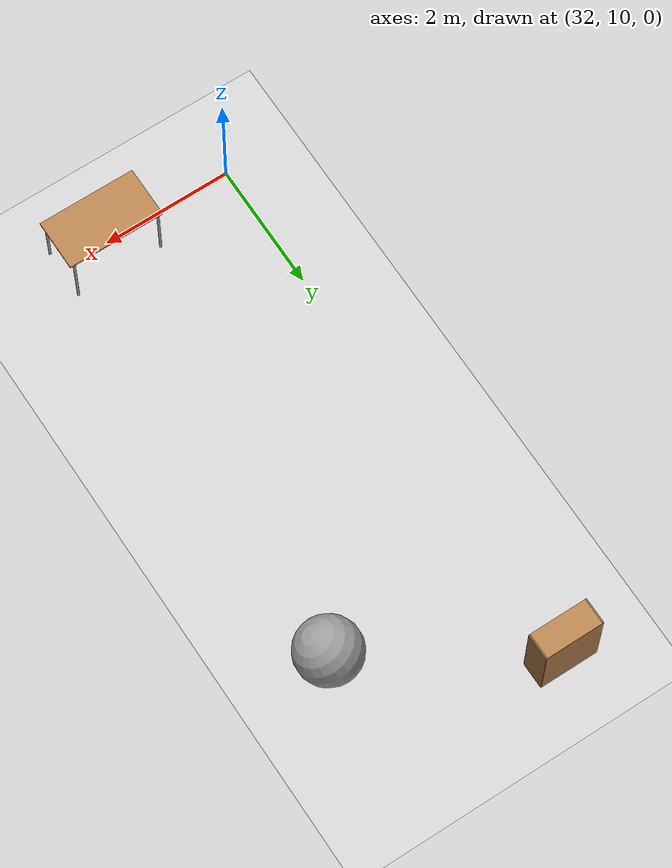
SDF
<sdf version="1.7">
 <world name="default">
  <model name="ground_plane">
   <static>1</static>
   <link name="link">
    <collision name="collision">
     <geometry><plane><normal>0 0 1</normal><size>1000 1000</size></plane></geometry>
     <surface>
      <contact><collide_bitmask>65535</collide_bitmask></contact>
      <friction><ode><mu>100</mu><mu2>50</mu2></ode></friction>
     </surface>
    </collision>
    <visual name="visual">
     <cast_shadows>0</cast_shadows>
     <geometry><plane><normal>0 0 1</normal><size>100 100</size></plane></geometry>
     <material>
      <script><uri>file://media/materials/scripts/gazebo.material</uri><name>Gazebo/Grey</name></script>
     </material>
    </visual>
   </link>
  </model>
  <model name="bookshelf_10">
   <static>1</static>
   <link name="link">
    <inertial><mass>1</mass></inertial>
    <collision name="back">
     <pose>0 0.005 0.6 0 -0 0</pose>
     <geometry><box><size>0.9 0.01 1.2</size></box></geometry>
    </collision>
    <visual name="visual1">
     <pose>0 0.005 0.6 0 -0 0</pose>
     <geometry><box><size>0.9 0.01 1.2</size></box></geometry>
     <material>
      <script><uri>file://media/materials/scripts/gazebo.material</uri><name>Gazebo/Wood</name></script>
     </material>
    </visual>
    <collision name="left_side">
     <pose>0.45 -0.195 0.6 0 -0 0</pose>
     <geometry><box><size>0.02 0.4 1.2</size></box></geometry>
    </collision>
    <visual name="visual2">
     <pose>0.45 -0.195 0.6 0 -0 0</pose>
     <geometry><box><size>0.02 0.4 1.2</size></box></geometry>
     <material>
      <script><uri>file://media/materials/scripts/gazebo.material</uri><name>Gazebo/Wood</name></script>
     </material>
    </visual>
    <collision name="right_side">
     <pose>-0.45 -0.195 0.6 0 -0 0</pose>
     <geometry><box><size>0.02 0.4 1.2</size></box></geometry>
    </collision>
    <visual name="visual3">
     <pose>-0.45 -0.195 0.6 0 -0 0</pose>
     <geometry><box><size>0.02 0.4 1.2</size></box></geometry>
     <material>
      <script><uri>file://media/materials/scripts/gazebo.material</uri><name>Gazebo/Wood</name></script>
     </material>
    </visual>
    <collision name="bottom">
     <pose>0 -0.195 0.03 0 -0 0</pose>
     <geometry><box><size>0.88 0.4 0.06</size></box></geometry>
    </collision>
    <visual name="visual4">
     <pose>0 -0.195 0.03 0 -0 0</pose>
     <geometry><box><size>0.88 0.4 0.06</size></box></geometry>
     <material>
      <script><uri>file://media/materials/scripts/gazebo.material</uri><name>Gazebo/Wood</name></script>
     </material>
    </visual>
    <collision name="top">
     <pose>0 -0.195 1.19 0 -0 0</pose>
     <geometry><box><size>0.88 0.4 0.02</size></box></geometry>
    </collision>
    <visual name="visual5">
     <pose>0 -0.195 1.19 0 -0 0</pose>
     <geometry><box><size>0.88 0.4 0.02</size></box></geometry>
     <material>
      <script><uri>file://media/materials/scripts/gazebo.material</uri><name>Gazebo/Wood</name></script>
     </material>
    </visual>
    <collision name="low_shelf">
     <pose>0 -0.195 0.43 0 -0 0</pose>
     <geometry><box><size>0.88 0.4 0.02</size></box></geometry>
    </collision>
    <visual name="visual6">
     <pose>0 -0.195 0.43 0 -0 0</pose>
     <geometry><box><size>0.88 0.4 0.02</size></box></geometry>
     <material>
      <script><uri>file://media/materials/scripts/gazebo.material</uri><name>Gazebo/Wood</name></script>
     </material>
    </visual>
    <collision name="high_shelf">
     <pose>0 -0.195 0.8 0 -0 0</pose>
     <geometry><box><size>0.88 0.4 0.02</size></box></geometry>
    </collision>
    <visual name="visual7">
     <pose>0 -0.195 0.8 0 -0 0</pose>
     <geometry><box><size>0.88 0.4 0.02</size></box></geometry>
     <material>
      <script><uri>file://media/materials/scripts/gazebo.material</uri><name>Gazebo/Wood</name></script>
     </material>
    </visual>
   </link>
   <pose>32.164 18.7319 0 0 -0 0</pose>
  </model>
  <model name="table_2">
   <static>1</static>
   <link name="link">
    <collision name="surface">
     <pose>0 0 1 0 -0 0</pose>
     <geometry><box><size>1.5 0.8 0.03</size></box></geometry>
     <surface><friction><ode><mu>0.6</mu><mu2>0.6</mu2></ode></friction></surface>
    </collision>
    <visual name="visual1">
     <pose>0 0 1 0 -0 0</pose>
     <geometry><box><size>1.5 0.8 0.03</size></box></geometry>
     <material>
      <script><uri>file://media/materials/scripts/gazebo.material</uri><name>Gazebo/Wood</name></script>
     </material>
    </visual>
    <collision name="front_left_leg">
     <pose>0.68 0.38 0.5 0 -0 0</pose>
     <geometry><cylinder><radius>0.02</radius><length>1</length></cylinder></geometry>
    </collision>
    <visual name="front_left_leg">
     <pose>0.68 0.38 0.5 0 -0 0</pose>
     <geometry><cylinder><radius>0.02</radius><length>1</length></cylinder></geometry>
     <material>
      <script><uri>file://media/materials/scripts/gazebo.material</uri><name>Gazebo/Grey</name></script>
     </material>
    </visual>
    <collision name="front_right_leg">
     <pose>0.68 -0.38 0.5 0 -0 0</pose>
     <geometry><cylinder><radius>0.02</radius><length>1</length></cylinder></geometry>
    </collision>
    <visual name="front_right_leg">
     <pose>0.68 -0.38 0.5 0 -0 0</pose>
     <geometry><cylinder><radius>0.02</radius><length>1</length></cylinder></geometry>
     <material>
      <script><uri>file://media/materials/scripts/gazebo.material</uri><name>Gazebo/Grey</name></script>
     </material>
    </visual>
    <collision name="back_right_leg">
     <pose>-0.68 -0.38 0.5 0 -0 0</pose>
     <geometry><cylinder><radius>0.02</radius><length>1</length></cylinder></geometry>
    </collision>
    <visual name="back_right_leg">
     <pose>-0.68 -0.38 0.5 0 -0 0</pose>
     <geometry><cylinder><radius>0.02</radius><length>1</length></cylinder></geometry>
     <material>
      <script><uri>file://media/materials/scripts/gazebo.material</uri><name>Gazebo/Grey</name></script>
     </material>
    </visual>
    <collision name="back_left_leg">
     <pose>-0.68 0.38 0.5 0 -0 0</pose>
     <geometry><cylinder><radius>0.02</radius><length>1</length></cylinder></geometry>
    </collision>
    <visual name="back_left_leg">
     <pose>-0.68 0.38 0.5 0 -0 0</pose>
     <geometry><cylinder><radius>0.02</radius><length>1</length></cylinder></geometry>
     <material>
      <script><uri>file://media/materials/scripts/gazebo.material</uri><name>Gazebo/Grey</name></script>
     </material>
    </visual>
   </link>
   <pose>34.0603 10.0725 0 0 -0 0</pose>
  </model>
  <model name="unit_sphere_0_clone">
   <pose>34.7958 16.8889 0.5 -2.92717 0.467925 -0.43825</pose>
   <link name="link">
    <inertial>
     <mass>1</mass>
     <inertia><ixx>0.1</ixx><ixy>0</ixy><ixz>0</ixz><iyy>0.1</iyy><iyz>0</iyz><izz>0.1</izz></inertia>
    </inertial>
    <collision name="collision">
     <geometry><sphere><radius>0.5</radius></sphere></geometry>
     <surface>
      <bounce>
       <restitution_coefficient>1</restitution_coefficient>
       <min_depth>0.01</min_depth>
       <max_depth>0.05</max_depth>
       <soft_cfm>0.1</soft_cfm>
      </bounce>
     </surface>
    </collision>
    <visual name="visual">
     <geometry><sphere><radius>0.5</radius></sphere></geometry>
     <material>
      <script><name>Gazebo/Grey</name><uri>file://media/materials/scripts/gazebo.material</uri></script>
     </material>
    </visual>
   </link>
  </model>
 </world>
</sdf>
